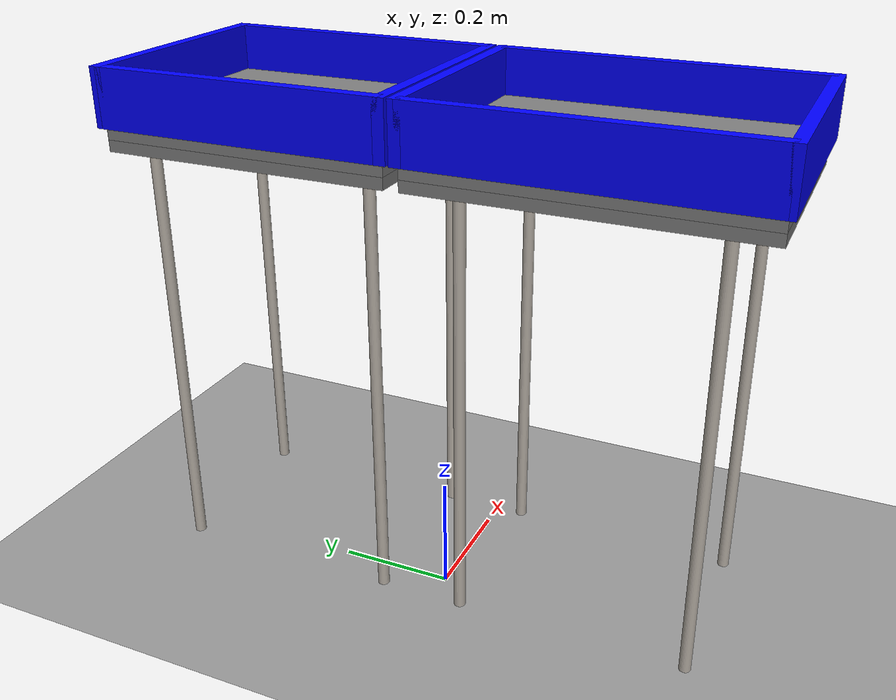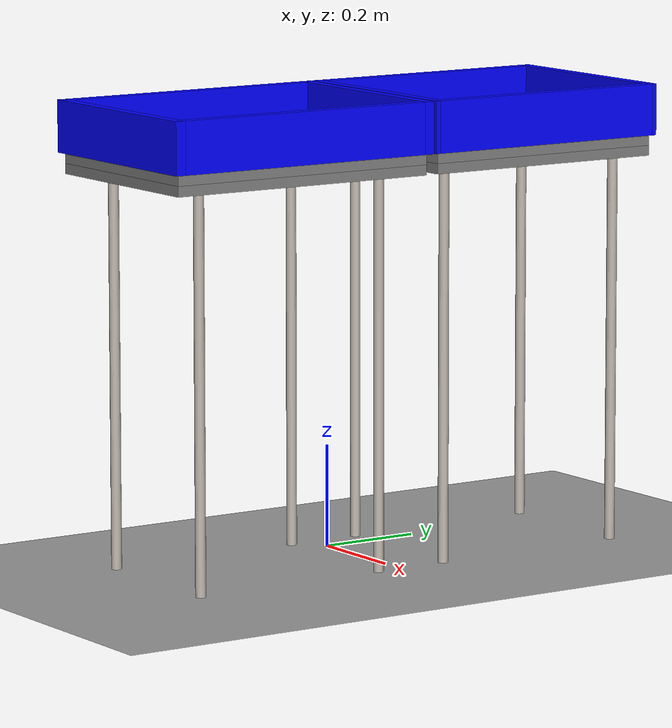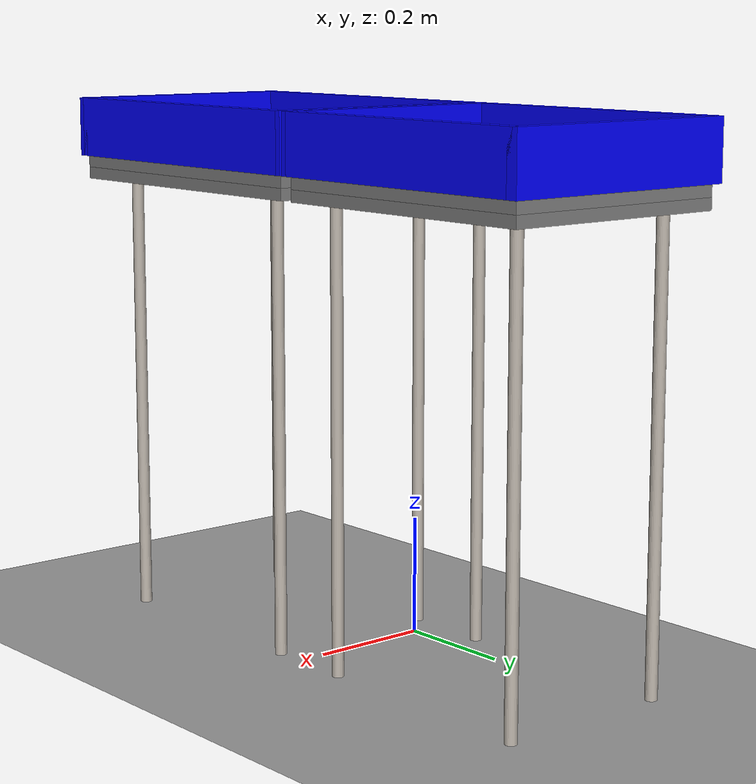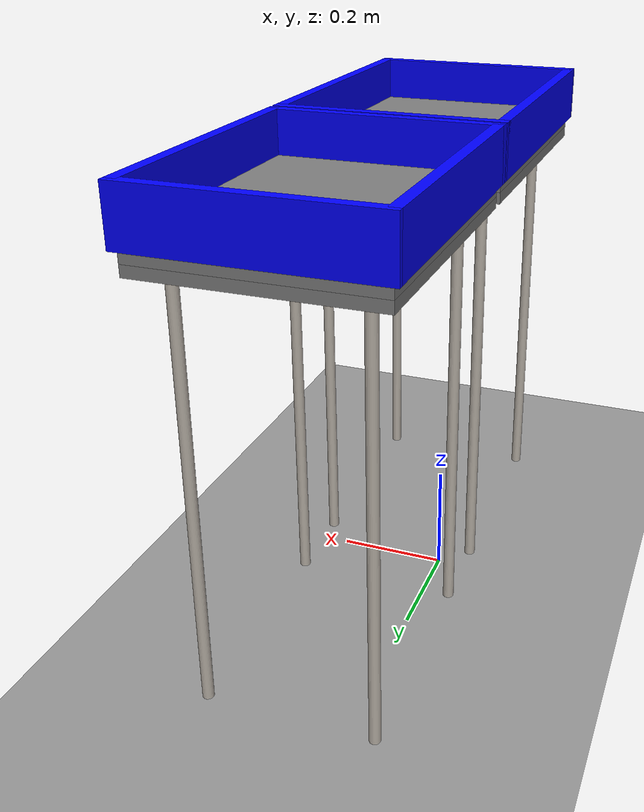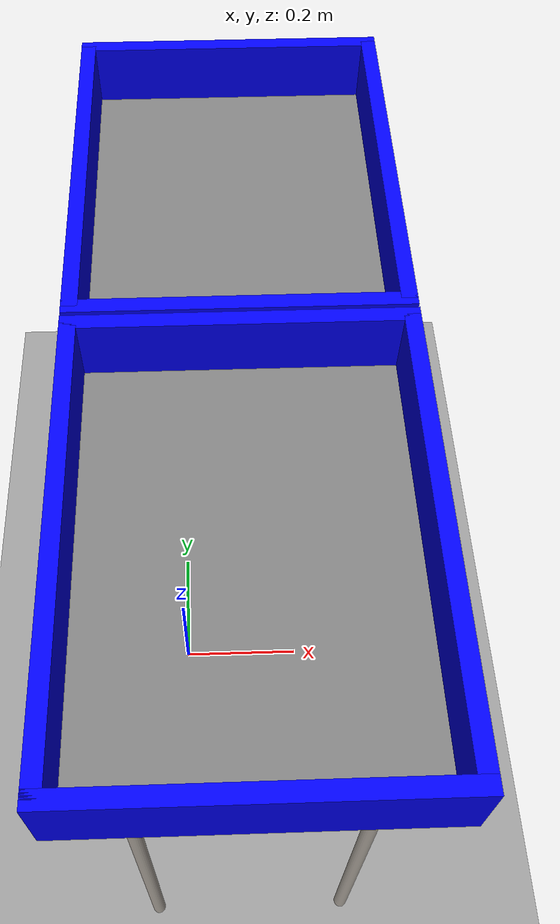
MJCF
<mujoco model="bins_arena">
  <compiler angle="radian" texturedir="textures" meshdir="meshes" autolimits="true" />
  <asset>
    <texture builtin="gradient" height="256" rgb1=".9 .9 1." rgb2=".2 .3 .4" type="skybox"
      width="256" />
    <!-- Floor texture using built-in gradient -->
    <texture builtin="gradient" height="256" width="256" rgb1="0.7 0.7 0.7" rgb2="0.5 0.5 0.5"
      name="texplane" />
    <material name="floorplane" reflectance="0.01" shininess="0.0" specular="0.0" texrepeat="2 2"
      texture="texplane" texuniform="true" />
    <!-- steel legs -->
    <texture file="steel-brushed.png" type="cube" name="tex-steel-brushed"/>
    <material name="table_legs_metal" reflectance="0.8" shininess="0.8" texrepeat="1 1" texture="tex-steel-brushed" />
    <!-- bins -->
    <texture file="light-wood.png" type="2d" name="tex-light-wood"/>
    <texture file="dark-wood.png" type="2d" name="tex-dark-wood"/>
    <material name="light-wood" reflectance="0" texrepeat="15 15" texture="tex-light-wood" texuniform="true"/>
    <material name="dark-wood" reflectance="0" texrepeat="5 5" texture="tex-dark-wood" texuniform="true"/>
  </asset>
  <worldbody>
    <geom condim="3" group="1" material="floorplane" name="floor" pos="0 0 0" size="3 3 .125" type="plane" conaffinity="15" contype="1"  />
    <!-- bins -->
    <body name="bin1" pos="0.1 -0.25 0.8">
        <geom pos="0 0 0" size="0.2 0.275 0.02" type="box" group="0" friction="1 0.005 0.0001" conaffinity="15" contype="2" />
        <geom pos="0 0 0" material="light-wood" size="0.2 0.275 0.02" type="box" conaffinity="0" contype="0" group="1" />

        <geom pos="0 0 -0.03" size="0.2 0.275 0.01" type="box" group="0" friction="1 0.005 0.0001" conaffinity="15" contype="2" />
        <geom pos="0 0 -0.03" material="light-wood" size="0.2 0.275 0.01" type="box" conaffinity="0" contype="0" group="1" />

        <!-- Table walls -->
        <geom pos="0 0.275 0.05" size="0.21 0.01 0.05" type="box" group="0" friction="1 0.005 0.0001" rgba="0 0 1 1" conaffinity="15" contype="4" />
        <geom pos="0 0.275 0.05" size="0.21 0.01 0.05" type="box" conaffinity="0" contype="0" group="1" material="light-wood" />
        <geom pos="0 -0.275 0.05" size="0.21 0.01 0.05" type="box" group="0" friction="1 0.005 0.0001" rgba="0 0 1 1" conaffinity="15" contype="4" />
        <geom pos="0 -0.275 0.05" size="0.21 0.01 0.05" type="box" conaffinity="0" contype="0" group="1" material="light-wood" />
        <geom pos="0.2 0 0.05" size="0.01 0.275 0.05" type="box" group="0" friction="1 0.005 0.0001" rgba="0 0 1 1" conaffinity="15" contype="4" />
        <geom pos="0.2 0 0.05" size="0.01 0.275 0.05" type="box" conaffinity="0" contype="0" group="1" material="light-wood" />
        <geom pos="-0.2 0 0.05" size="0.01 0.275 0.05" type="box" group="0" friction="1 0.005 0.0001" rgba="0 0 1 1" conaffinity="15" contype="4" />
        <geom pos="-0.2 0 0.05" size="0.01 0.275 0.05" type="box" conaffinity="0" contype="0" group="1" material="light-wood" />
        <!-- Legs (visual only) -->
        <geom pos="0.15 0.2 -0.4" size="0.01 0.4" type="cylinder" conaffinity="0" contype="0" group="1" name="bin1_leg1_visual" material="table_legs_metal"/>
        <geom pos="-0.15 0.2 -0.4" size="0.01 0.4" type="cylinder" conaffinity="0" contype="0" group="1" name="bin1_leg2_visual" material="table_legs_metal"/>
        <geom pos="-0.15 -0.2 -0.4" size="0.01 0.4" type="cylinder" conaffinity="0" contype="0" group="1" name="bin1_leg3_visual" material="table_legs_metal"/>
        <geom pos="0.15 -0.2 -0.4" size="0.01 0.4" type="cylinder" conaffinity="0" contype="0" group="1" name="bin1_leg4_visual" material="table_legs_metal"/>
    </body>
    <body name="bin2" pos="0.1 0.3 0.8">
        <!-- Table surface -->
        <geom pos="0 0 0" size="0.2 0.25 0.02" type="box" group="0" friction="1 0.005 0.0001" conaffinity="15" contype="2" />
        <geom pos="0 0 0" material="dark-wood" size="0.2 0.25 0.02" type="box" conaffinity="0" contype="0" group="1" />

        <!-- Table bottom (closes the bin) -->
        <geom pos="0 0 -0.03" size="0.2 0.25 0.01" type="box" group="0" friction="1 0.005 0.0001" conaffinity="15" contype="2" />
        <geom pos="0 0 -0.03" material="dark-wood" size="0.2 0.25 0.01" type="box" conaffinity="0" contype="0" group="1" />

        <!-- Table walls -->
        <geom pos="0 0.25 0.05" size="0.21 0.01 0.05" type="box" group="0" friction="1 0.005 0.0001" rgba="0 0 1 1" conaffinity="15" contype="4" />
        <geom pos="0 0.25 0.05" size="0.21 0.01 0.05" type="box" conaffinity="0" contype="0" group="1" material="dark-wood" />
        <geom pos="0 -0.25 0.05" size="0.21 0.01 0.05" type="box" group="0" friction="1 0.005 0.0001" rgba="0 0 1 1" conaffinity="15" contype="4" />
        <geom pos="0 -0.25 0.05" size="0.21 0.01 0.05" type="box" conaffinity="0" contype="0" group="1" material="dark-wood" />
        <geom pos="0.2 0 0.05" size="0.01 0.25 0.05" type="box" group="0" friction="1 0.005 0.0001" rgba="0 0 1 1" conaffinity="15" contype="4" />
        <geom pos="0.2 0 0.05" size="0.01 0.25 0.05" type="box" conaffinity="0" contype="0" group="1" material="dark-wood" />
        <geom pos="-0.2 0 0.05" size="0.01 0.25 0.05" type="box" group="0" friction="1 0.005 0.0001" rgba="0 0 1 1" conaffinity="15" contype="4" />
        <geom pos="-0.2 0 0.05" size="0.01 0.25 0.05" type="box" conaffinity="0" contype="0" group="1" material="dark-wood" />

        <!-- Legs (visual only) -->
        <geom pos="0.15 0.2 -0.4" size="0.01 0.4" type="cylinder" conaffinity="0" contype="0" group="1" name="bin2_leg1_visual" material="table_legs_metal"/>
        <geom pos="-0.15 0.2 -0.4" size="0.01 0.4" type="cylinder" conaffinity="0" contype="0" group="1" name="bin2_leg2_visual" material="table_legs_metal"/>
        <geom pos="-0.15 -0.2 -0.4" size="0.01 0.4" type="cylinder" conaffinity="0" contype="0" group="1" name="bin2_leg3_visual" material="table_legs_metal"/>
        <geom pos="0.15 -0.2 -0.4" size="0.01 0.4" type="cylinder" conaffinity="0" contype="0" group="1" name="bin2_leg4_visual" material="table_legs_metal"/>
    </body>
    <light pos="1.0 1.0 1.5" dir="-0.2 -0.2 -1" specular="0.3 0.3 0.3" directional="true" castshadow="false"/>
    <!-- front view -->
    <camera mode="fixed" name="frontview" pos="1.6 0 1.45" quat="0.56 0.43 0.43 0.56"/>
    <!-- bird view -->
    <camera mode="fixed" name="birdview" pos="-0.2 0 3.0" quat="0.7071 0 0 0.7071"/>
    <!-- agent view -->
    <camera mode="fixed" name="agentview" pos="1.0 0 1.75" quat="0.653 0.271 0.271 0.653"/>
  </worldbody>
</mujoco>
